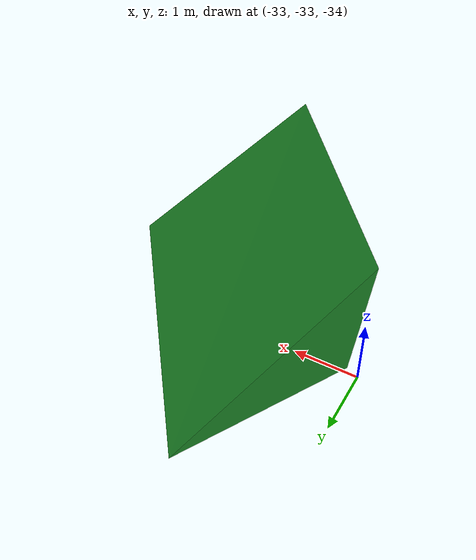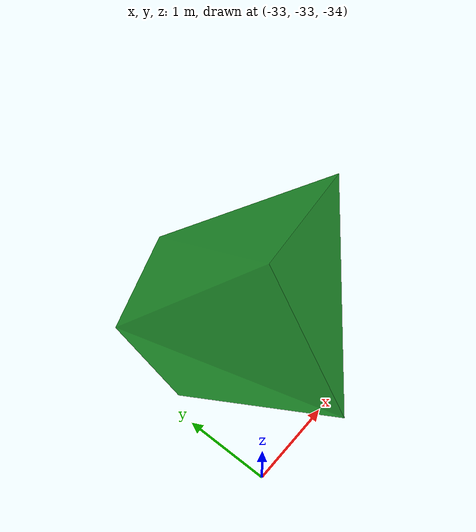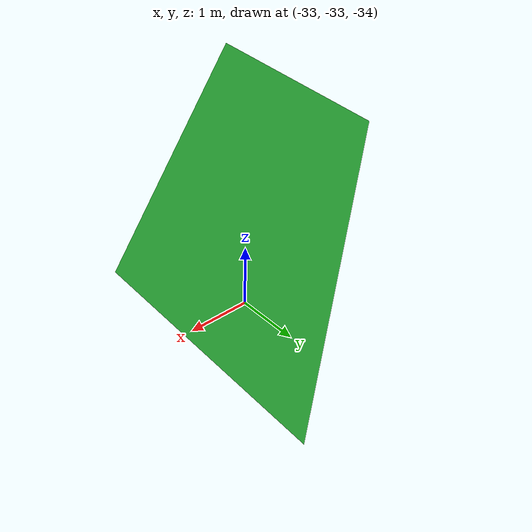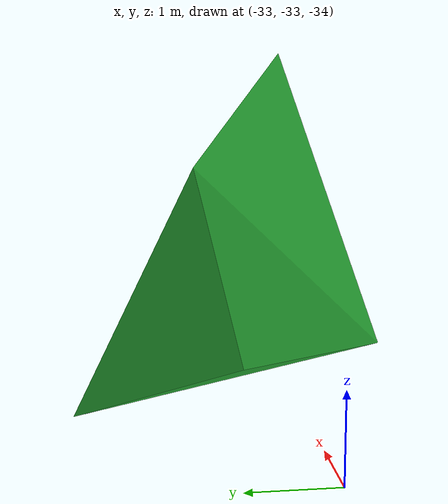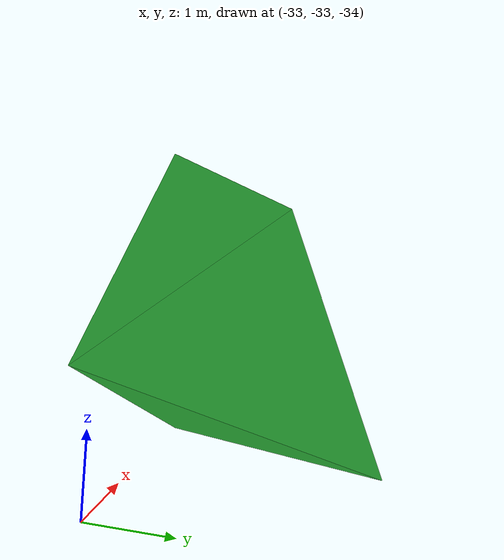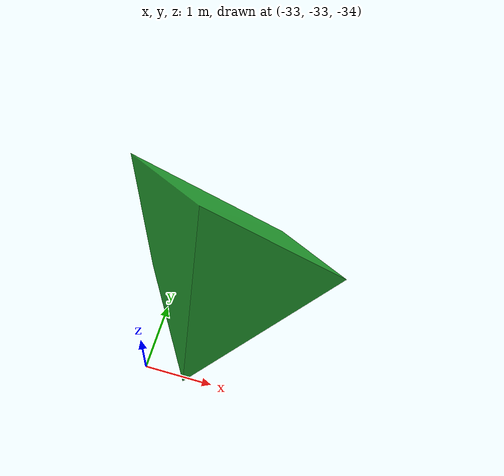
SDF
<?xml version='1.0'?>
<sdf version="1.6">

         <model name="mesh">
             <static>0</static>
             <self_collide>0</self_collide>
             <allow_auto_disable>1</allow_auto_disable>

             <frame name="object_frame">
                 <pose frame="/world">0 0 0 0 -0 0 </pose>
             </frame>

             <pose frame="/world">0 0 0 0 -0 0</pose>

             <link name="link">

                 <gravity>1</gravity>
                 <self_collide>0</self_collide>
                 <kinematic>0</kinematic>

                 <frame name="link_frame">
                     <pose frame="object_frame">0 0 0 0 -0 0</pose>
                 </frame>

                 <!-- red green blue offsets: model pivot point -->
                 <!-- 32 is just half of the voxelgrid dimension (64)-->
                 <pose name="link_frame">-32 -32 -32 0 -0 0</pose>

                 <inertial>
                     <mass>6.22</mass>
                     <inertia>
                         <!-- http://gazebosim.org/tutorials?tut=inertia&cat=build_robot -->
                         <ixx>4.4435</ixx>
                         <ixy>0.00523</ixy>
                         <ixz>0.35138</ixz>
                         <iyy>4.55276</iyy>
                         <iyz>0.60895</iyz>
                         <izz>3.31072</izz>
                     </inertia>

                     <frame name="link_inertia_frame">
                         <pose frame="link_frame">0 0 0 0 -0 0</pose>
                     </frame>

                     <pose frame="link_inertia_frame">-0.12 0.02 0.02 0 0 0                     </pose>
                 </inertial>

                 <collision name="collision">
                     <!--
                         Maximum number of contacts allowed between two entities.
                         This value overrides the max_contacts element defined in physics.
                     -->
                     <max_contacts>20</max_contacts>

                     <!-- A frame of reference to which a pose is relative. -->
                     <frame name="collision_frame">
                         <pose frame="link_frame">0 0 0 0 -0 0</pose>
                     </frame>
                     <!-- A position(x,y,z) and orientation(roll, pitch yaw) with respect to the specified frame. -->
                     <pose frame="collision_frame">0 0 0 0 -0 0</pose>

                     <geometry>
                         <mesh>
                             <uri>/Users/mitchellcohen/Documents/GitHub/stl2sdf2//Users/mitchellcohen/Desktop/untitledsmall.stl_sdf/mesh.stl</uri>
                             <!-- Scaling factor applied to the mesh -->
                             <scale>1.0 1.0 1.0</scale>
                         </mesh>
                     </geometry>
                     <!-- http://sdformat.org/spec?ver=1.6&elem=collision#surface_soft_contact -->
                     <surface></surface>
                 </collision>

                 <visual name="visual">
                     <cast_shadows>1</cast_shadows>
                     <transparency>0</transparency>

                     <frame name="visual_frame">
                         <pose frame="link_frame">0 0 0 0 -0 0</pose>
                     </frame>
                     <pose frame="visual_frame">0 0 0 0 -0 0</pose>

                     <material>

                         <script>
                             <uri>file://media/materials/scripts/gazebo.material</uri>
                             <name>Gazebo/Green</name>
                         </script>
                         <shader type="vertex">
                           <normal_map>__default__</normal_map>
                         </shader>

                         <lighting>1</lighting>
 		                <ambient>0.15 0.75 0.35 1</ambient>
 		                <diffuse>0.1 0.95 0.25 1</diffuse>
 		                <specular>0.01 0.01 0.01 1</specular>
 		                <emissive>0 0 0 1</emissive>
                     </material>

                     <geometry>
                         <mesh>
                             <uri>/Users/mitchellcohen/Documents/GitHub/stl2sdf2//Users/mitchellcohen/Desktop/untitledsmall.stl_sdf/mesh.stl</uri>
                             <!-- Scaling factor applied to the mesh -->
                             <scale>1.0 1.0 1.0</scale>
                         </mesh>
                     </geometry>
                 </visual>
             </link>
         </model>
     </sdf>
